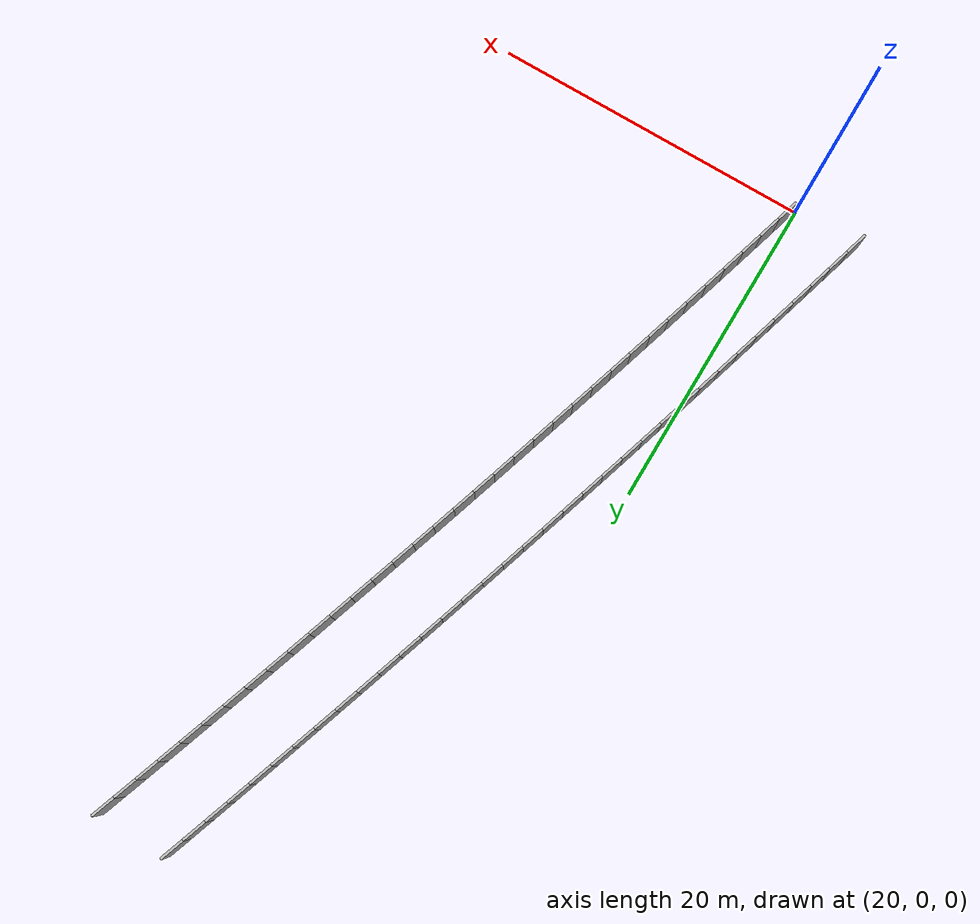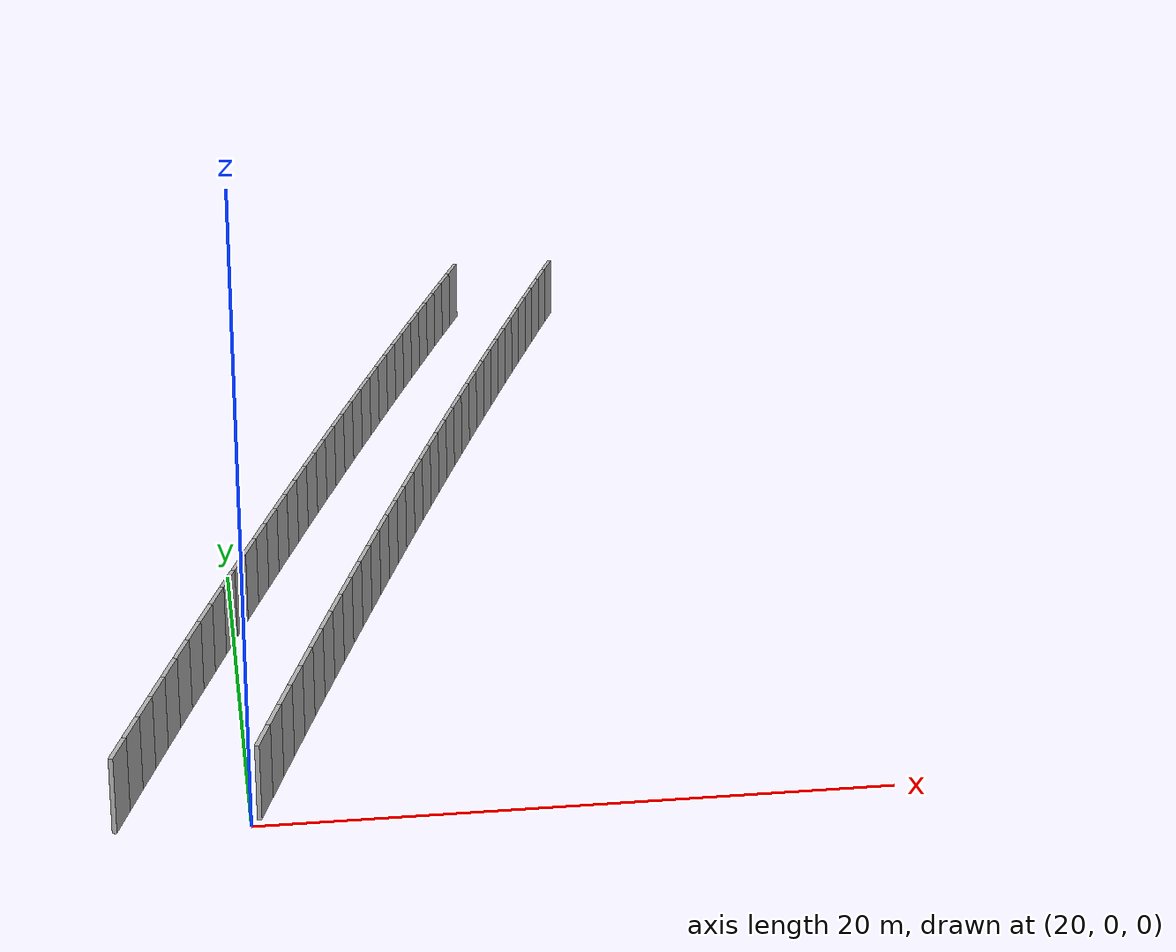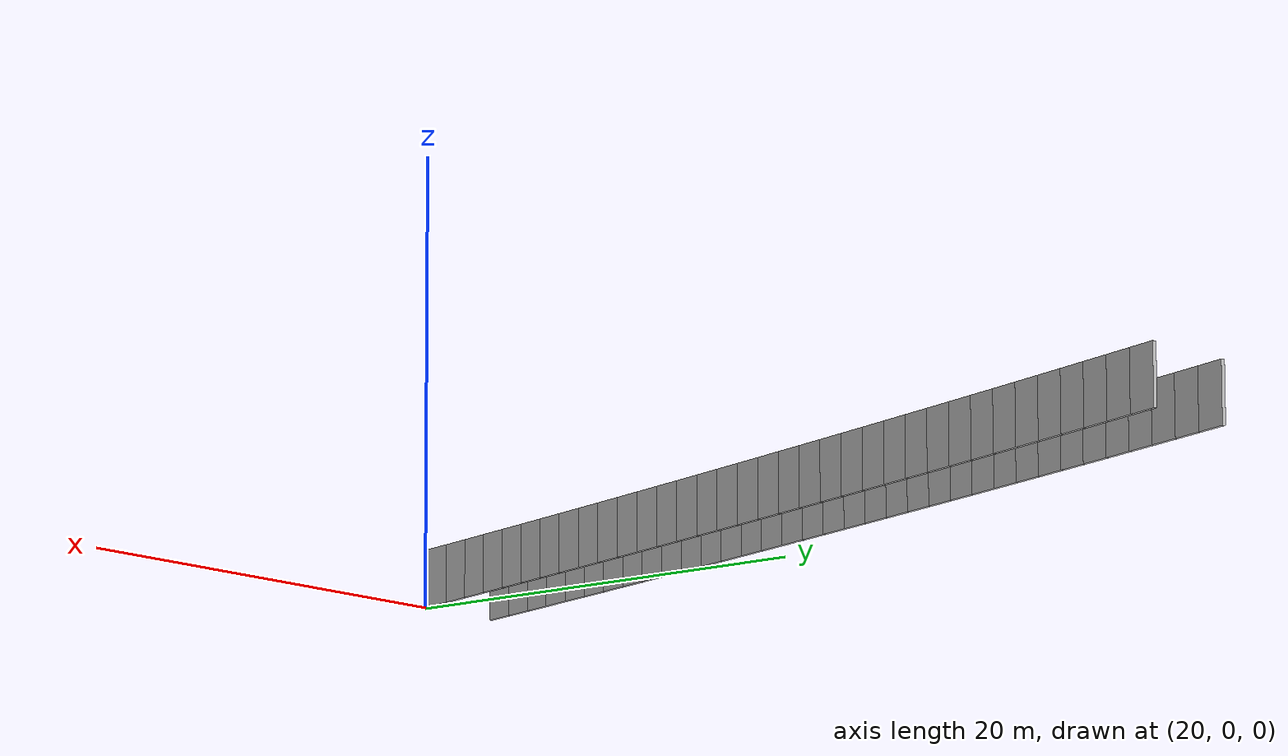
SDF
<?xml version="1.0" ?>
<sdf version="1.6">
  <model name="sps_0331">
    <pose frame="">0 0 0 0 -0 0</pose>
    <static>1</static>
    <self_collide>0</self_collide>
    <allow_auto_disable>0</allow_auto_disable>
    <link name="Wall4999">
      <kinematic>0</kinematic>
      <gravity>1</gravity>
      <self_collide>0</self_collide>
      <collision name="collision">
        <geometry>
          <box>
            <size>1.49666 0.15 2.5</size>
          </box>
        </geometry>
        <pose frame="">0 0 0 0 -0 0</pose>
      </collision>
      <visual name="visual">
        <geometry>
          <box>
            <size>1.49666 0.15 2.5</size>
          </box>
        </geometry>
        <pose frame="">0 0 0 0 -0 0</pose>
        <cast_shadows>1</cast_shadows>
        <transparency>0.0</transparency>
      </visual>
      <pose frame="">35.6731 49.6658 1.25 0 0 -1.90183</pose>
    </link>
    <link name="Wall5000">
      <kinematic>0</kinematic>
      <gravity>1</gravity>
      <self_collide>0</self_collide>
      <collision name="collision">
        <geometry>
          <box>
            <size>1.49643 0.15 2.5</size>
          </box>
        </geometry>
        <pose frame="">0 0 0 0 -0 0</pose>
      </collision>
      <visual name="visual">
        <geometry>
          <box>
            <size>1.49643 0.15 2.5</size>
          </box>
        </geometry>
        <pose frame="">0 0 0 0 -0 0</pose>
        <cast_shadows>1</cast_shadows>
        <transparency>0.0</transparency>
      </visual>
      <pose frame="">35.1879 48.2501 1.25 0 0 -1.90012</pose>
    </link>
    <link name="Wall5001">
      <kinematic>0</kinematic>
      <gravity>1</gravity>
      <self_collide>0</self_collide>
      <collision name="collision">
        <geometry>
          <box>
            <size>1.49667 0.15 2.5</size>
          </box>
        </geometry>
        <pose frame="">0 0 0 0 -0 0</pose>
      </collision>
      <visual name="visual">
        <geometry>
          <box>
            <size>1.49667 0.15 2.5</size>
          </box>
        </geometry>
        <pose frame="">0 0 0 0 -0 0</pose>
        <cast_shadows>1</cast_shadows>
        <transparency>0.0</transparency>
      </visual>
      <pose frame="">34.705 46.8336 1.25 0 0 -1.89856</pose>
    </link>
    <link name="Wall5002">
      <kinematic>0</kinematic>
      <gravity>1</gravity>
      <self_collide>0</self_collide>
      <collision name="collision">
        <geometry>
          <box>
            <size>1.49654 0.15 2.5</size>
          </box>
        </geometry>
        <pose frame="">0 0 0 0 -0 0</pose>
      </collision>
      <visual name="visual">
        <geometry>
          <box>
            <size>1.49654 0.15 2.5</size>
          </box>
        </geometry>
        <pose frame="">0 0 0 0 -0 0</pose>
        <cast_shadows>1</cast_shadows>
        <transparency>0.0</transparency>
      </visual>
      <pose frame="">34.2243 45.4163 1.25 0 0 -1.89704</pose>
    </link>
    <link name="Wall5003">
      <kinematic>0</kinematic>
      <gravity>1</gravity>
      <self_collide>0</self_collide>
      <collision name="collision">
        <geometry>
          <box>
            <size>1.49636 0.15 2.5</size>
          </box>
        </geometry>
        <pose frame="">0 0 0 0 -0 0</pose>
      </collision>
      <visual name="visual">
        <geometry>
          <box>
            <size>1.49636 0.15 2.5</size>
          </box>
        </geometry>
        <pose frame="">0 0 0 0 -0 0</pose>
        <cast_shadows>1</cast_shadows>
        <transparency>0.0</transparency>
      </visual>
      <pose frame="">33.7457 43.9984 1.25 0 0 -1.89553</pose>
    </link>
    <link name="Wall5004">
      <kinematic>0</kinematic>
      <gravity>1</gravity>
      <self_collide>0</self_collide>
      <collision name="collision">
        <geometry>
          <box>
            <size>1.49662 0.15 2.5</size>
          </box>
        </geometry>
        <pose frame="">0 0 0 0 -0 0</pose>
      </collision>
      <visual name="visual">
        <geometry>
          <box>
            <size>1.49662 0.15 2.5</size>
          </box>
        </geometry>
        <pose frame="">0 0 0 0 -0 0</pose>
        <cast_shadows>1</cast_shadows>
        <transparency>0.0</transparency>
      </visual>
      <pose frame="">33.2696 42.5797 1.25 0 0 -1.89375</pose>
    </link>
    <link name="Wall5005">
      <kinematic>0</kinematic>
      <gravity>1</gravity>
      <self_collide>0</self_collide>
      <collision name="collision">
        <geometry>
          <box>
            <size>1.49647 0.15 2.5</size>
          </box>
        </geometry>
        <pose frame="">0 0 0 0 -0 0</pose>
      </collision>
      <visual name="visual">
        <geometry>
          <box>
            <size>1.49647 0.15 2.5</size>
          </box>
        </geometry>
        <pose frame="">0 0 0 0 -0 0</pose>
        <cast_shadows>1</cast_shadows>
        <transparency>0.0</transparency>
      </visual>
      <pose frame="">32.7956 41.1602 1.25 0 0 -1.89228</pose>
    </link>
    <link name="Wall5006">
      <kinematic>0</kinematic>
      <gravity>1</gravity>
      <self_collide>0</self_collide>
      <collision name="collision">
        <geometry>
          <box>
            <size>1.49651 0.15 2.5</size>
          </box>
        </geometry>
        <pose frame="">0 0 0 0 -0 0</pose>
      </collision>
      <visual name="visual">
        <geometry>
          <box>
            <size>1.49651 0.15 2.5</size>
          </box>
        </geometry>
        <pose frame="">0 0 0 0 -0 0</pose>
        <cast_shadows>1</cast_shadows>
        <transparency>0.0</transparency>
      </visual>
      <pose frame="">32.3239 39.74 1.25 0 0 -1.89068</pose>
    </link>
    <link name="Wall5007">
      <kinematic>0</kinematic>
      <gravity>1</gravity>
      <self_collide>0</self_collide>
      <collision name="collision">
        <geometry>
          <box>
            <size>1.49651 0.15 2.5</size>
          </box>
        </geometry>
        <pose frame="">0 0 0 0 -0 0</pose>
      </collision>
      <visual name="visual">
        <geometry>
          <box>
            <size>1.49651 0.15 2.5</size>
          </box>
        </geometry>
        <pose frame="">0 0 0 0 -0 0</pose>
        <cast_shadows>1</cast_shadows>
        <transparency>0.0</transparency>
      </visual>
      <pose frame="">31.8545 38.319 1.25 0 0 -1.889</pose>
    </link>
    <link name="Wall5008">
      <kinematic>0</kinematic>
      <gravity>1</gravity>
      <self_collide>0</self_collide>
      <collision name="collision">
        <geometry>
          <box>
            <size>1.49646 0.15 2.5</size>
          </box>
        </geometry>
        <pose frame="">0 0 0 0 -0 0</pose>
      </collision>
      <visual name="visual">
        <geometry>
          <box>
            <size>1.49646 0.15 2.5</size>
          </box>
        </geometry>
        <pose frame="">0 0 0 0 -0 0</pose>
        <cast_shadows>1</cast_shadows>
        <transparency>0.0</transparency>
      </visual>
      <pose frame="">31.3874 36.8973 1.25 0 0 -1.88759</pose>
    </link>
    <link name="Wall5009">
      <kinematic>0</kinematic>
      <gravity>1</gravity>
      <self_collide>0</self_collide>
      <collision name="collision">
        <geometry>
          <box>
            <size>1.49665 0.15 2.5</size>
          </box>
        </geometry>
        <pose frame="">0 0 0 0 -0 0</pose>
      </collision>
      <visual name="visual">
        <geometry>
          <box>
            <size>1.49665 0.15 2.5</size>
          </box>
        </geometry>
        <pose frame="">0 0 0 0 -0 0</pose>
        <cast_shadows>1</cast_shadows>
        <transparency>0.0</transparency>
      </visual>
      <pose frame="">30.9224 35.4748 1.25 0 0 -1.88588</pose>
    </link>
    <link name="Wall5010">
      <kinematic>0</kinematic>
      <gravity>1</gravity>
      <self_collide>0</self_collide>
      <collision name="collision">
        <geometry>
          <box>
            <size>1.49661 0.15 2.5</size>
          </box>
        </geometry>
        <pose frame="">0 0 0 0 -0 0</pose>
      </collision>
      <visual name="visual">
        <geometry>
          <box>
            <size>1.49661 0.15 2.5</size>
          </box>
        </geometry>
        <pose frame="">0 0 0 0 -0 0</pose>
        <cast_shadows>1</cast_shadows>
        <transparency>0.0</transparency>
      </visual>
      <pose frame="">30.4596 34.0515 1.25 0 0 -1.88434</pose>
    </link>
    <link name="Wall5011">
      <kinematic>0</kinematic>
      <gravity>1</gravity>
      <self_collide>0</self_collide>
      <collision name="collision">
        <geometry>
          <box>
            <size>1.49663 0.15 2.5</size>
          </box>
        </geometry>
        <pose frame="">0 0 0 0 -0 0</pose>
      </collision>
      <visual name="visual">
        <geometry>
          <box>
            <size>1.49663 0.15 2.5</size>
          </box>
        </geometry>
        <pose frame="">0 0 0 0 -0 0</pose>
        <cast_shadows>1</cast_shadows>
        <transparency>0.0</transparency>
      </visual>
      <pose frame="">29.9991 32.6275 1.25 0 0 -1.8828</pose>
    </link>
    <link name="Wall5012">
      <kinematic>0</kinematic>
      <gravity>1</gravity>
      <self_collide>0</self_collide>
      <collision name="collision">
        <geometry>
          <box>
            <size>1.4967 0.15 2.5</size>
          </box>
        </geometry>
        <pose frame="">0 0 0 0 -0 0</pose>
      </collision>
      <visual name="visual">
        <geometry>
          <box>
            <size>1.4967 0.15 2.5</size>
          </box>
        </geometry>
        <pose frame="">0 0 0 0 -0 0</pose>
        <cast_shadows>1</cast_shadows>
        <transparency>0.0</transparency>
      </visual>
      <pose frame="">29.5409 31.2027 1.25 0 0 -1.88107</pose>
    </link>
    <link name="Wall5013">
      <kinematic>0</kinematic>
      <gravity>1</gravity>
      <self_collide>0</self_collide>
      <collision name="collision">
        <geometry>
          <box>
            <size>1.4964 0.15 2.5</size>
          </box>
        </geometry>
        <pose frame="">0 0 0 0 -0 0</pose>
      </collision>
      <visual name="visual">
        <geometry>
          <box>
            <size>1.4964 0.15 2.5</size>
          </box>
        </geometry>
        <pose frame="">0 0 0 0 -0 0</pose>
        <cast_shadows>1</cast_shadows>
        <transparency>0.0</transparency>
      </visual>
      <pose frame="">29.085 29.7773 1.25 0 0 -1.87964</pose>
    </link>
    <link name="Wall5014">
      <kinematic>0</kinematic>
      <gravity>1</gravity>
      <self_collide>0</self_collide>
      <collision name="collision">
        <geometry>
          <box>
            <size>1.49659 0.15 2.5</size>
          </box>
        </geometry>
        <pose frame="">0 0 0 0 -0 0</pose>
      </collision>
      <visual name="visual">
        <geometry>
          <box>
            <size>1.49659 0.15 2.5</size>
          </box>
        </geometry>
        <pose frame="">0 0 0 0 -0 0</pose>
        <cast_shadows>1</cast_shadows>
        <transparency>0.0</transparency>
      </visual>
      <pose frame="">28.6314 28.3512 1.25 0 0 -1.87788</pose>
    </link>
    <link name="Wall5015">
      <kinematic>0</kinematic>
      <gravity>1</gravity>
      <self_collide>0</self_collide>
      <collision name="collision">
        <geometry>
          <box>
            <size>1.49656 0.15 2.5</size>
          </box>
        </geometry>
        <pose frame="">0 0 0 0 -0 0</pose>
      </collision>
      <visual name="visual">
        <geometry>
          <box>
            <size>1.49656 0.15 2.5</size>
          </box>
        </geometry>
        <pose frame="">0 0 0 0 -0 0</pose>
        <cast_shadows>1</cast_shadows>
        <transparency>0.0</transparency>
      </visual>
      <pose frame="">28.18 26.9243 1.25 0 0 -1.87648</pose>
    </link>
    <link name="Wall5016">
      <kinematic>0</kinematic>
      <gravity>1</gravity>
      <self_collide>0</self_collide>
      <collision name="collision">
        <geometry>
          <box>
            <size>1.49643 0.15 2.5</size>
          </box>
        </geometry>
        <pose frame="">0 0 0 0 -0 0</pose>
      </collision>
      <visual name="visual">
        <geometry>
          <box>
            <size>1.49643 0.15 2.5</size>
          </box>
        </geometry>
        <pose frame="">0 0 0 0 -0 0</pose>
        <cast_shadows>1</cast_shadows>
        <transparency>0.0</transparency>
      </visual>
      <pose frame="">27.7309 25.4968 1.25 0 0 -1.87484</pose>
    </link>
    <link name="Wall5017">
      <kinematic>0</kinematic>
      <gravity>1</gravity>
      <self_collide>0</self_collide>
      <collision name="collision">
        <geometry>
          <box>
            <size>1.49653 0.15 2.5</size>
          </box>
        </geometry>
        <pose frame="">0 0 0 0 -0 0</pose>
      </collision>
      <visual name="visual">
        <geometry>
          <box>
            <size>1.49653 0.15 2.5</size>
          </box>
        </geometry>
        <pose frame="">0 0 0 0 -0 0</pose>
        <cast_shadows>1</cast_shadows>
        <transparency>0.0</transparency>
      </visual>
      <pose frame="">27.284 24.0686 1.25 0 0 -1.87328</pose>
    </link>
    <link name="Wall5018">
      <kinematic>0</kinematic>
      <gravity>1</gravity>
      <self_collide>0</self_collide>
      <collision name="collision">
        <geometry>
          <box>
            <size>1.49646 0.15 2.5</size>
          </box>
        </geometry>
        <pose frame="">0 0 0 0 -0 0</pose>
      </collision>
      <visual name="visual">
        <geometry>
          <box>
            <size>1.49646 0.15 2.5</size>
          </box>
        </geometry>
        <pose frame="">0 0 0 0 -0 0</pose>
        <cast_shadows>1</cast_shadows>
        <transparency>0.0</transparency>
      </visual>
      <pose frame="">26.8393 22.6397 1.25 0 0 -1.87163</pose>
    </link>
    <link name="Wall5019">
      <kinematic>0</kinematic>
      <gravity>1</gravity>
      <self_collide>0</self_collide>
      <collision name="collision">
        <geometry>
          <box>
            <size>1.4965 0.15 2.5</size>
          </box>
        </geometry>
        <pose frame="">0 0 0 0 -0 0</pose>
      </collision>
      <visual name="visual">
        <geometry>
          <box>
            <size>1.4965 0.15 2.5</size>
          </box>
        </geometry>
        <pose frame="">0 0 0 0 -0 0</pose>
        <cast_shadows>1</cast_shadows>
        <transparency>0.0</transparency>
      </visual>
      <pose frame="">26.3971 21.2101 1.25 0 0 -1.87004</pose>
    </link>
    <link name="Wall5020">
      <kinematic>0</kinematic>
      <gravity>1</gravity>
      <self_collide>0</self_collide>
      <collision name="collision">
        <geometry>
          <box>
            <size>1.4964 0.15 2.5</size>
          </box>
        </geometry>
        <pose frame="">0 0 0 0 -0 0</pose>
      </collision>
      <visual name="visual">
        <geometry>
          <box>
            <size>1.4964 0.15 2.5</size>
          </box>
        </geometry>
        <pose frame="">0 0 0 0 -0 0</pose>
        <cast_shadows>1</cast_shadows>
        <transparency>0.0</transparency>
      </visual>
      <pose frame="">25.9571 19.7798 1.25 0 0 -1.86844</pose>
    </link>
    <link name="Wall5021">
      <kinematic>0</kinematic>
      <gravity>1</gravity>
      <self_collide>0</self_collide>
      <collision name="collision">
        <geometry>
          <box>
            <size>1.49655 0.15 2.5</size>
          </box>
        </geometry>
        <pose frame="">0 0 0 0 -0 0</pose>
      </collision>
      <visual name="visual">
        <geometry>
          <box>
            <size>1.49655 0.15 2.5</size>
          </box>
        </geometry>
        <pose frame="">0 0 0 0 -0 0</pose>
        <cast_shadows>1</cast_shadows>
        <transparency>0.0</transparency>
      </visual>
      <pose frame="">25.5192 18.3488 1.25 0 0 -1.86696</pose>
    </link>
    <link name="Wall5022">
      <kinematic>0</kinematic>
      <gravity>1</gravity>
      <self_collide>0</self_collide>
      <collision name="collision">
        <geometry>
          <box>
            <size>1.49662 0.15 2.5</size>
          </box>
        </geometry>
        <pose frame="">0 0 0 0 -0 0</pose>
      </collision>
      <visual name="visual">
        <geometry>
          <box>
            <size>1.49662 0.15 2.5</size>
          </box>
        </geometry>
        <pose frame="">0 0 0 0 -0 0</pose>
        <cast_shadows>1</cast_shadows>
        <transparency>0.0</transparency>
      </visual>
      <pose frame="">25.0837 16.917 1.25 0 0 -1.86528</pose>
    </link>
    <link name="Wall5023">
      <kinematic>0</kinematic>
      <gravity>1</gravity>
      <self_collide>0</self_collide>
      <collision name="collision">
        <geometry>
          <box>
            <size>1.49658 0.15 2.5</size>
          </box>
        </geometry>
        <pose frame="">0 0 0 0 -0 0</pose>
      </collision>
      <visual name="visual">
        <geometry>
          <box>
            <size>1.49658 0.15 2.5</size>
          </box>
        </geometry>
        <pose frame="">0 0 0 0 -0 0</pose>
        <cast_shadows>1</cast_shadows>
        <transparency>0.0</transparency>
      </visual>
      <pose frame="">24.6504 15.4845 1.25 0 0 -1.8638</pose>
    </link>
    <link name="Wall5024">
      <kinematic>0</kinematic>
      <gravity>1</gravity>
      <self_collide>0</self_collide>
      <collision name="collision">
        <geometry>
          <box>
            <size>1.49645 0.15 2.5</size>
          </box>
        </geometry>
        <pose frame="">0 0 0 0 -0 0</pose>
      </collision>
      <visual name="visual">
        <geometry>
          <box>
            <size>1.49645 0.15 2.5</size>
          </box>
        </geometry>
        <pose frame="">0 0 0 0 -0 0</pose>
        <cast_shadows>1</cast_shadows>
        <transparency>0.0</transparency>
      </visual>
      <pose frame="">24.2194 14.0514 1.25 0 0 -1.86208</pose>
    </link>
    <link name="Wall5025">
      <kinematic>0</kinematic>
      <gravity>1</gravity>
      <self_collide>0</self_collide>
      <collision name="collision">
        <geometry>
          <box>
            <size>1.49659 0.15 2.5</size>
          </box>
        </geometry>
        <pose frame="">0 0 0 0 -0 0</pose>
      </collision>
      <visual name="visual">
        <geometry>
          <box>
            <size>1.49659 0.15 2.5</size>
          </box>
        </geometry>
        <pose frame="">0 0 0 0 -0 0</pose>
        <cast_shadows>1</cast_shadows>
        <transparency>0.0</transparency>
      </visual>
      <pose frame="">23.7907 12.6176 1.25 0 0 -1.86056</pose>
    </link>
    <link name="Wall5026">
      <kinematic>0</kinematic>
      <gravity>1</gravity>
      <self_collide>0</self_collide>
      <collision name="collision">
        <geometry>
          <box>
            <size>1.49649 0.15 2.5</size>
          </box>
        </geometry>
        <pose frame="">0 0 0 0 -0 0</pose>
      </collision>
      <visual name="visual">
        <geometry>
          <box>
            <size>1.49649 0.15 2.5</size>
          </box>
        </geometry>
        <pose frame="">0 0 0 0 -0 0</pose>
        <cast_shadows>1</cast_shadows>
        <transparency>0.0</transparency>
      </visual>
      <pose frame="">23.3642 11.1831 1.25 0 0 -1.85905</pose>
    </link>
    <link name="Wall5027">
      <kinematic>0</kinematic>
      <gravity>1</gravity>
      <self_collide>0</self_collide>
      <collision name="collision">
        <geometry>
          <box>
            <size>1.49652 0.15 2.5</size>
          </box>
        </geometry>
        <pose frame="">0 0 0 0 -0 0</pose>
      </collision>
      <visual name="visual">
        <geometry>
          <box>
            <size>1.49652 0.15 2.5</size>
          </box>
        </geometry>
        <pose frame="">0 0 0 0 -0 0</pose>
        <cast_shadows>1</cast_shadows>
        <transparency>0.0</transparency>
      </visual>
      <pose frame="">22.9398 9.748 1.25 0 0 -1.85751</pose>
    </link>
    <link name="Wall5028">
      <kinematic>0</kinematic>
      <gravity>1</gravity>
      <self_collide>0</self_collide>
      <collision name="collision">
        <geometry>
          <box>
            <size>1.49654 0.15 2.5</size>
          </box>
        </geometry>
        <pose frame="">0 0 0 0 -0 0</pose>
      </collision>
      <visual name="visual">
        <geometry>
          <box>
            <size>1.49654 0.15 2.5</size>
          </box>
        </geometry>
        <pose frame="">0 0 0 0 -0 0</pose>
        <cast_shadows>1</cast_shadows>
        <transparency>0.0</transparency>
      </visual>
      <pose frame="">22.5179 8.31218 1.25 0 0 -1.85568</pose>
    </link>
    <link name="Wall5029">
      <kinematic>0</kinematic>
      <gravity>1</gravity>
      <self_collide>0</self_collide>
      <collision name="collision">
        <geometry>
          <box>
            <size>1.4965 0.15 2.5</size>
          </box>
        </geometry>
        <pose frame="">0 0 0 0 -0 0</pose>
      </collision>
      <visual name="visual">
        <geometry>
          <box>
            <size>1.4965 0.15 2.5</size>
          </box>
        </geometry>
        <pose frame="">0 0 0 0 -0 0</pose>
        <cast_shadows>1</cast_shadows>
        <transparency>0.0</transparency>
      </visual>
      <pose frame="">22.0983 6.87569 1.25 0 0 -1.85428</pose>
    </link>
    <link name="Wall5030">
      <kinematic>0</kinematic>
      <gravity>1</gravity>
      <self_collide>0</self_collide>
      <collision name="collision">
        <geometry>
          <box>
            <size>1.49648 0.15 2.5</size>
          </box>
        </geometry>
        <pose frame="">0 0 0 0 -0 0</pose>
      </collision>
      <visual name="visual">
        <geometry>
          <box>
            <size>1.49648 0.15 2.5</size>
          </box>
        </geometry>
        <pose frame="">0 0 0 0 -0 0</pose>
        <cast_shadows>1</cast_shadows>
        <transparency>0.0</transparency>
      </visual>
      <pose frame="">21.681 5.43858 1.25 0 0 -1.85263</pose>
    </link>
    <link name="Wall5031">
      <kinematic>0</kinematic>
      <gravity>1</gravity>
      <self_collide>0</self_collide>
      <collision name="collision">
        <geometry>
          <box>
            <size>1.4964 0.15 2.5</size>
          </box>
        </geometry>
        <pose frame="">0 0 0 0 -0 0</pose>
      </collision>
      <visual name="visual">
        <geometry>
          <box>
            <size>1.4964 0.15 2.5</size>
          </box>
        </geometry>
        <pose frame="">0 0 0 0 -0 0</pose>
        <cast_shadows>1</cast_shadows>
        <transparency>0.0</transparency>
      </visual>
      <pose frame="">21.2659 4.00087 1.25 0 0 -1.85112</pose>
    </link>
    <link name="Wall5032">
      <kinematic>0</kinematic>
      <gravity>1</gravity>
      <self_collide>0</self_collide>
      <collision name="collision">
        <geometry>
          <box>
            <size>1.4965 0.15 2.5</size>
          </box>
        </geometry>
        <pose frame="">0 0 0 0 -0 0</pose>
      </collision>
      <visual name="visual">
        <geometry>
          <box>
            <size>1.4965 0.15 2.5</size>
          </box>
        </geometry>
        <pose frame="">0 0 0 0 -0 0</pose>
        <cast_shadows>1</cast_shadows>
        <transparency>0.0</transparency>
      </visual>
      <pose frame="">20.853 2.56248 1.25 0 0 -1.84944</pose>
    </link>
    <link name="Wall5033">
      <kinematic>0</kinematic>
      <gravity>1</gravity>
      <self_collide>0</self_collide>
      <collision name="collision">
        <geometry>
          <box>
            <size>1.49665 0.15 2.5</size>
          </box>
        </geometry>
        <pose frame="">0 0 0 0 -0 0</pose>
      </collision>
      <visual name="visual">
        <geometry>
          <box>
            <size>1.49665 0.15 2.5</size>
          </box>
        </geometry>
        <pose frame="">0 0 0 0 -0 0</pose>
        <cast_shadows>1</cast_shadows>
        <transparency>0.0</transparency>
      </visual>
      <pose frame="">20.4426 1.12331 1.25 0 0 -1.84785</pose>
    </link>
    <link name="Wall6796">
      <kinematic>0</kinematic>
      <gravity>1</gravity>
      <self_collide>0</self_collide>
      <collision name="collision">
        <geometry>
          <box>
            <size>1.50305 0.15 2.5</size>
          </box>
        </geometry>
        <pose frame="">0 0 0 0 -0 0</pose>
      </collision>
      <visual name="visual">
        <geometry>
          <box>
            <size>1.50305 0.15 2.5</size>
          </box>
        </geometry>
        <pose frame="">0 0 0 0 -0 0</pose>
        <cast_shadows>1</cast_shadows>
        <transparency>0.0</transparency>
      </visual>
      <pose frame="">31.2711 49.5892 1.25 0 0 -1.9002</pose>
    </link>
    <link name="Wall6797">
      <kinematic>0</kinematic>
      <gravity>1</gravity>
      <self_collide>0</self_collide>
      <collision name="collision">
        <geometry>
          <box>
            <size>1.50321 0.15 2.5</size>
          </box>
        </geometry>
        <pose frame="">0 0 0 0 -0 0</pose>
      </collision>
      <visual name="visual">
        <geometry>
          <box>
            <size>1.50321 0.15 2.5</size>
          </box>
        </geometry>
        <pose frame="">0 0 0 0 -0 0</pose>
        <cast_shadows>1</cast_shadows>
        <transparency>0.0</transparency>
      </visual>
      <pose frame="">30.786 48.1665 1.25 0 0 -1.89862</pose>
    </link>
    <link name="Wall6798">
      <kinematic>0</kinematic>
      <gravity>1</gravity>
      <self_collide>0</self_collide>
      <collision name="collision">
        <geometry>
          <box>
            <size>1.50341 0.15 2.5</size>
          </box>
        </geometry>
        <pose frame="">0 0 0 0 -0 0</pose>
      </collision>
      <visual name="visual">
        <geometry>
          <box>
            <size>1.50341 0.15 2.5</size>
          </box>
        </geometry>
        <pose frame="">0 0 0 0 -0 0</pose>
        <cast_shadows>1</cast_shadows>
        <transparency>0.0</transparency>
      </visual>
      <pose frame="">30.3032 46.7428 1.25 0 0 -1.89686</pose>
    </link>
    <link name="Wall6799">
      <kinematic>0</kinematic>
      <gravity>1</gravity>
      <self_collide>0</self_collide>
      <collision name="collision">
        <geometry>
          <box>
            <size>1.50296 0.15 2.5</size>
          </box>
        </geometry>
        <pose frame="">0 0 0 0 -0 0</pose>
      </collision>
      <visual name="visual">
        <geometry>
          <box>
            <size>1.50296 0.15 2.5</size>
          </box>
        </geometry>
        <pose frame="">0 0 0 0 -0 0</pose>
        <cast_shadows>1</cast_shadows>
        <transparency>0.0</transparency>
      </visual>
      <pose frame="">29.8227 45.3185 1.25 0 0 -1.89546</pose>
    </link>
    <link name="Wall6800">
      <kinematic>0</kinematic>
      <gravity>1</gravity>
      <self_collide>0</self_collide>
      <collision name="collision">
        <geometry>
          <box>
            <size>1.50287 0.15 2.5</size>
          </box>
        </geometry>
        <pose frame="">0 0 0 0 -0 0</pose>
      </collision>
      <visual name="visual">
        <geometry>
          <box>
            <size>1.50287 0.15 2.5</size>
          </box>
        </geometry>
        <pose frame="">0 0 0 0 -0 0</pose>
        <cast_shadows>1</cast_shadows>
        <transparency>0.0</transparency>
      </visual>
      <pose frame="">29.3445 43.8937 1.25 0 0 -1.89377</pose>
    </link>
    <link name="Wall6801">
      <kinematic>0</kinematic>
      <gravity>1</gravity>
      <self_collide>0</self_collide>
      <collision name="collision">
        <geometry>
          <box>
            <size>1.50322 0.15 2.5</size>
          </box>
        </geometry>
        <pose frame="">0 0 0 0 -0 0</pose>
      </collision>
      <visual name="visual">
        <geometry>
          <box>
            <size>1.50322 0.15 2.5</size>
          </box>
        </geometry>
        <pose frame="">0 0 0 0 -0 0</pose>
        <cast_shadows>1</cast_shadows>
        <transparency>0.0</transparency>
      </visual>
      <pose frame="">28.8686 42.468 1.25 0 0 -1.89228</pose>
    </link>
    <link name="Wall6802">
      <kinematic>0</kinematic>
      <gravity>1</gravity>
      <self_collide>0</self_collide>
      <collision name="collision">
        <geometry>
          <box>
            <size>1.50313 0.15 2.5</size>
          </box>
        </geometry>
        <pose frame="">0 0 0 0 -0 0</pose>
      </collision>
      <visual name="visual">
        <geometry>
          <box>
            <size>1.50313 0.15 2.5</size>
          </box>
        </geometry>
        <pose frame="">0 0 0 0 -0 0</pose>
        <cast_shadows>1</cast_shadows>
        <transparency>0.0</transparency>
      </visual>
      <pose frame="">28.3946 41.0415 1.25 0 0 -1.8908</pose>
    </link>
    <link name="Wall6803">
      <kinematic>0</kinematic>
      <gravity>1</gravity>
      <self_collide>0</self_collide>
      <collision name="collision">
        <geometry>
          <box>
            <size>1.50311 0.15 2.5</size>
          </box>
        </geometry>
        <pose frame="">0 0 0 0 -0 0</pose>
      </collision>
      <visual name="visual">
        <geometry>
          <box>
            <size>1.50311 0.15 2.5</size>
          </box>
        </geometry>
        <pose frame="">0 0 0 0 -0 0</pose>
        <cast_shadows>1</cast_shadows>
        <transparency>0.0</transparency>
      </visual>
      <pose frame="">27.923 39.6143 1.25 0 0 -1.88909</pose>
    </link>
    <link name="Wall6804">
      <kinematic>0</kinematic>
      <gravity>1</gravity>
      <self_collide>0</self_collide>
      <collision name="collision">
        <geometry>
          <box>
            <size>1.50305 0.15 2.5</size>
          </box>
        </geometry>
        <pose frame="">0 0 0 0 -0 0</pose>
      </collision>
      <visual name="visual">
        <geometry>
          <box>
            <size>1.50305 0.15 2.5</size>
          </box>
        </geometry>
        <pose frame="">0 0 0 0 -0 0</pose>
        <cast_shadows>1</cast_shadows>
        <transparency>0.0</transparency>
      </visual>
      <pose frame="">27.4538 38.1863 1.25 0 0 -1.8874</pose>
    </link>
    <link name="Wall6805">
      <kinematic>0</kinematic>
      <gravity>1</gravity>
      <self_collide>0</self_collide>
      <collision name="collision">
        <geometry>
          <box>
            <size>1.50302 0.15 2.5</size>
          </box>
        </geometry>
        <pose frame="">0 0 0 0 -0 0</pose>
      </collision>
      <visual name="visual">
        <geometry>
          <box>
            <size>1.50302 0.15 2.5</size>
          </box>
        </geometry>
        <pose frame="">0 0 0 0 -0 0</pose>
        <cast_shadows>1</cast_shadows>
        <transparency>0.0</transparency>
      </visual>
      <pose frame="">26.987 36.7576 1.25 0 0 -1.88591</pose>
    </link>
    <link name="Wall6806">
      <kinematic>0</kinematic>
      <gravity>1</gravity>
      <self_collide>0</self_collide>
      <collision name="collision">
        <geometry>
          <box>
            <size>1.50292 0.15 2.5</size>
          </box>
        </geometry>
        <pose frame="">0 0 0 0 -0 0</pose>
      </collision>
      <visual name="visual">
        <geometry>
          <box>
            <size>1.50292 0.15 2.5</size>
          </box>
        </geometry>
        <pose frame="">0 0 0 0 -0 0</pose>
        <cast_shadows>1</cast_shadows>
        <transparency>0.0</transparency>
      </visual>
      <pose frame="">26.5222 35.3283 1.25 0 0 -1.88439</pose>
    </link>
    <link name="Wall6807">
      <kinematic>0</kinematic>
      <gravity>1</gravity>
      <self_collide>0</self_collide>
      <collision name="collision">
        <geometry>
          <box>
            <size>1.5031 0.15 2.5</size>
          </box>
        </geometry>
        <pose frame="">0 0 0 0 -0 0</pose>
      </collision>
      <visual name="visual">
        <geometry>
          <box>
            <size>1.5031 0.15 2.5</size>
          </box>
        </geometry>
        <pose frame="">0 0 0 0 -0 0</pose>
        <cast_shadows>1</cast_shadows>
        <transparency>0.0</transparency>
      </visual>
      <pose frame="">26.0598 33.8982 1.25 0 0 -1.88265</pose>
    </link>
    <link name="Wall6808">
      <kinematic>0</kinematic>
      <gravity>1</gravity>
      <self_collide>0</self_collide>
      <collision name="collision">
        <geometry>
          <box>
            <size>1.50324 0.15 2.5</size>
          </box>
        </geometry>
        <pose frame="">0 0 0 0 -0 0</pose>
      </collision>
      <visual name="visual">
        <geometry>
          <box>
            <size>1.50324 0.15 2.5</size>
          </box>
        </geometry>
        <pose frame="">0 0 0 0 -0 0</pose>
        <cast_shadows>1</cast_shadows>
        <transparency>0.0</transparency>
      </visual>
      <pose frame="">25.5997 32.4672 1.25 0 0 -1.88121</pose>
    </link>
    <link name="Wall6809">
      <kinematic>0</kinematic>
      <gravity>1</gravity>
      <self_collide>0</self_collide>
      <collision name="collision">
        <geometry>
          <box>
            <size>1.50311 0.15 2.5</size>
          </box>
        </geometry>
        <pose frame="">0 0 0 0 -0 0</pose>
      </collision>
      <visual name="visual">
        <geometry>
          <box>
            <size>1.50311 0.15 2.5</size>
          </box>
        </geometry>
        <pose frame="">0 0 0 0 -0 0</pose>
        <cast_shadows>1</cast_shadows>
        <transparency>0.0</transparency>
      </visual>
      <pose frame="">25.1417 31.0355 1.25 0 0 -1.87962</pose>
    </link>
    <link name="Wall6810">
      <kinematic>0</kinematic>
      <gravity>1</gravity>
      <self_collide>0</self_collide>
      <collision name="collision">
        <geometry>
          <box>
            <size>1.50288 0.15 2.5</size>
          </box>
        </geometry>
        <pose frame="">0 0 0 0 -0 0</pose>
      </collision>
      <visual name="visual">
        <geometry>
          <box>
            <size>1.50288 0.15 2.5</size>
          </box>
        </geometry>
        <pose frame="">0 0 0 0 -0 0</pose>
        <cast_shadows>1</cast_shadows>
        <transparency>0.0</transparency>
      </visual>
      <pose frame="">24.6861 29.6032 1.25 0 0 -1.87792</pose>
    </link>
    <link name="Wall6811">
      <kinematic>0</kinematic>
      <gravity>1</gravity>
      <self_collide>0</self_collide>
      <collision name="collision">
        <geometry>
          <box>
            <size>1.50312 0.15 2.5</size>
          </box>
        </geometry>
        <pose frame="">0 0 0 0 -0 0</pose>
      </collision>
      <visual name="visual">
        <geometry>
          <box>
            <size>1.50312 0.15 2.5</size>
          </box>
        </geometry>
        <pose frame="">0 0 0 0 -0 0</pose>
        <cast_shadows>1</cast_shadows>
        <transparency>0.0</transparency>
      </visual>
      <pose frame="">24.2327 28.1702 1.25 0 0 -1.87655</pose>
    </link>
    <link name="Wall6812">
      <kinematic>0</kinematic>
      <gravity>1</gravity>
      <self_collide>0</self_collide>
      <collision name="collision">
        <geometry>
          <box>
            <size>1.50307 0.15 2.5</size>
          </box>
        </geometry>
        <pose frame="">0 0 0 0 -0 0</pose>
      </collision>
      <visual name="visual">
        <geometry>
          <box>
            <size>1.50307 0.15 2.5</size>
          </box>
        </geometry>
        <pose frame="">0 0 0 0 -0 0</pose>
        <cast_shadows>1</cast_shadows>
        <transparency>0.0</transparency>
      </visual>
      <pose frame="">23.7815 26.7364 1.25 0 0 -1.87468</pose>
    </link>
    <link name="Wall6813">
      <kinematic>0</kinematic>
      <gravity>1</gravity>
      <self_collide>0</self_collide>
      <collision name="collision">
        <geometry>
          <box>
            <size>1.50307 0.15 2.5</size>
          </box>
        </geometry>
        <pose frame="">0 0 0 0 -0 0</pose>
      </collision>
      <visual name="visual">
        <geometry>
          <box>
            <size>1.50307 0.15 2.5</size>
          </box>
        </geometry>
        <pose frame="">0 0 0 0 -0 0</pose>
        <cast_shadows>1</cast_shadows>
        <transparency>0.0</transparency>
      </visual>
      <pose frame="">23.3328 25.3019 1.25 0 0 -1.87332</pose>
    </link>
    <link name="Wall6814">
      <kinematic>0</kinematic>
      <gravity>1</gravity>
      <self_collide>0</self_collide>
      <collision name="collision">
        <geometry>
          <box>
            <size>1.50311 0.15 2.5</size>
          </box>
        </geometry>
        <pose frame="">0 0 0 0 -0 0</pose>
      </collision>
      <visual name="visual">
        <geometry>
          <box>
            <size>1.50311 0.15 2.5</size>
          </box>
        </geometry>
        <pose frame="">0 0 0 0 -0 0</pose>
        <cast_shadows>1</cast_shadows>
        <transparency>0.0</transparency>
      </visual>
      <pose frame="">22.8862 23.8667 1.25 0 0 -1.87161</pose>
    </link>
    <link name="Wall6815">
      <kinematic>0</kinematic>
      <gravity>1</gravity>
      <self_collide>0</self_collide>
      <collision name="collision">
        <geometry>
          <box>
            <size>1.503 0.15 2.5</size>
          </box>
        </geometry>
        <pose frame="">0 0 0 0 -0 0</pose>
      </collision>
      <visual name="visual">
        <geometry>
          <box>
            <size>1.503 0.15 2.5</size>
          </box>
        </geometry>
        <pose frame="">0 0 0 0 -0 0</pose>
        <cast_shadows>1</cast_shadows>
        <transparency>0.0</transparency>
      </visual>
      <pose frame="">22.4419 22.4308 1.25 0 0 -1.87015</pose>
    </link>
    <link name="Wall6816">
      <kinematic>0</kinematic>
      <gravity>1</gravity>
      <self_collide>0</self_collide>
      <collision name="collision">
        <geometry>
          <box>
            <size>1.5031 0.15 2.5</size>
          </box>
        </geometry>
        <pose frame="">0 0 0 0 -0 0</pose>
      </collision>
      <visual name="visual">
        <geometry>
          <box>
            <size>1.5031 0.15 2.5</size>
          </box>
        </geometry>
        <pose frame="">0 0 0 0 -0 0</pose>
        <cast_shadows>1</cast_shadows>
        <transparency>0.0</transparency>
      </visual>
      <pose frame="">21.9998 20.9942 1.25 0 0 -1.86843</pose>
    </link>
    <link name="Wall6817">
      <kinematic>0</kinematic>
      <gravity>1</gravity>
      <self_collide>0</self_collide>
      <collision name="collision">
        <geometry>
          <box>
            <size>1.50321 0.15 2.5</size>
          </box>
        </geometry>
        <pose frame="">0 0 0 0 -0 0</pose>
      </collision>
      <visual name="visual">
        <geometry>
          <box>
            <size>1.50321 0.15 2.5</size>
          </box>
        </geometry>
        <pose frame="">0 0 0 0 -0 0</pose>
        <cast_shadows>1</cast_shadows>
        <transparency>0.0</transparency>
      </visual>
      <pose frame="">21.5601 19.5568 1.25 0 0 -1.86688</pose>
    </link>
    <link name="Wall6818">
      <kinematic>0</kinematic>
      <gravity>1</gravity>
      <self_collide>0</self_collide>
      <collision name="collision">
        <geometry>
          <box>
            <size>1.50316 0.15 2.5</size>
          </box>
        </geometry>
        <pose frame="">0 0 0 0 -0 0</pose>
      </collision>
      <visual name="visual">
        <geometry>
          <box>
            <size>1.50316 0.15 2.5</size>
          </box>
        </geometry>
        <pose frame="">0 0 0 0 -0 0</pose>
        <cast_shadows>1</cast_shadows>
        <transparency>0.0</transparency>
      </visual>
      <pose frame="">21.1226 18.1187 1.25 0 0 -1.86536</pose>
    </link>
    <link name="Wall6819">
      <kinematic>0</kinematic>
      <gravity>1</gravity>
      <self_collide>0</self_collide>
      <collision name="collision">
        <geometry>
          <box>
            <size>1.50304 0.15 2.5</size>
          </box>
        </geometry>
        <pose frame="">0 0 0 0 -0 0</pose>
      </collision>
      <visual name="visual">
        <geometry>
          <box>
            <size>1.50304 0.15 2.5</size>
          </box>
        </geometry>
        <pose frame="">0 0 0 0 -0 0</pose>
        <cast_shadows>1</cast_shadows>
        <transparency>0.0</transparency>
      </visual>
      <pose frame="">20.6875 16.68 1.25 0 0 -1.86369</pose>
    </link>
    <link name="Wall6820">
      <kinematic>0</kinematic>
      <gravity>1</gravity>
      <self_collide>0</self_collide>
      <collision name="collision">
        <geometry>
          <box>
            <size>1.50312 0.15 2.5</size>
          </box>
        </geometry>
        <pose frame="">0 0 0 0 -0 0</pose>
      </collision>
      <visual name="visual">
        <geometry>
          <box>
            <size>1.50312 0.15 2.5</size>
          </box>
        </geometry>
        <pose frame="">0 0 0 0 -0 0</pose>
        <cast_shadows>1</cast_shadows>
        <transparency>0.0</transparency>
      </visual>
      <pose frame="">20.2546 15.2406 1.25 0 0 -1.86219</pose>
    </link>
    <link name="Wall6821">
      <kinematic>0</kinematic>
      <gravity>1</gravity>
      <self_collide>0</self_collide>
      <collision name="collision">
        <geometry>
          <box>
            <size>1.50307 0.15 2.5</size>
          </box>
        </geometry>
        <pose frame="">0 0 0 0 -0 0</pose>
      </collision>
      <visual name="visual">
        <geometry>
          <box>
            <size>1.50307 0.15 2.5</size>
          </box>
        </geometry>
        <pose frame="">0 0 0 0 -0 0</pose>
        <cast_shadows>1</cast_shadows>
        <transparency>0.0</transparency>
      </visual>
      <pose frame="">19.824 13.8005 1.25 0 0 -1.8605</pose>
    </link>
    <link name="Wall6822">
      <kinematic>0</kinematic>
      <gravity>1</gravity>
      <self_collide>0</self_collide>
      <collision name="collision">
        <geometry>
          <box>
            <size>1.50298 0.15 2.5</size>
          </box>
        </geometry>
        <pose frame="">0 0 0 0 -0 0</pose>
      </collision>
      <visual name="visual">
        <geometry>
          <box>
            <size>1.50298 0.15 2.5</size>
          </box>
        </geometry>
        <pose frame="">0 0 0 0 -0 0</pose>
        <cast_shadows>1</cast_shadows>
        <transparency>0.0</transparency>
      </visual>
      <pose frame="">19.3957 12.3598 1.25 0 0 -1.85904</pose>
    </link>
    <link name="Wall6823">
      <kinematic>0</kinematic>
      <gravity>1</gravity>
      <self_collide>0</self_collide>
      <collision name="collision">
        <geometry>
          <box>
            <size>1.50316 0.15 2.5</size>
          </box>
        </geometry>
        <pose frame="">0 0 0 0 -0 0</pose>
      </collision>
      <visual name="visual">
        <geometry>
          <box>
            <size>1.50316 0.15 2.5</size>
          </box>
        </geometry>
        <pose frame="">0 0 0 0 -0 0</pose>
        <cast_shadows>1</cast_shadows>
        <transparency>0.0</transparency>
      </visual>
      <pose frame="">18.9695 10.9184 1.25 0 0 -1.85743</pose>
    </link>
    <link name="Wall6824">
      <kinematic>0</kinematic>
      <gravity>1</gravity>
      <self_collide>0</self_collide>
      <collision name="collision">
        <geometry>
          <box>
            <size>1.50307 0.15 2.5</size>
          </box>
        </geometry>
        <pose frame="">0 0 0 0 -0 0</pose>
      </collision>
      <visual name="visual">
        <geometry>
          <box>
            <size>1.50307 0.15 2.5</size>
          </box>
        </geometry>
        <pose frame="">0 0 0 0 -0 0</pose>
        <cast_shadows>1</cast_shadows>
        <transparency>0.0</transparency>
      </visual>
      <pose frame="">18.5456 9.47627 1.25 0 0 -1.85593</pose>
    </link>
    <link name="Wall6825">
      <kinematic>0</kinematic>
      <gravity>1</gravity>
      <self_collide>0</self_collide>
      <collision name="collision">
        <geometry>
          <box>
            <size>1.50299 0.15 2.5</size>
          </box>
        </geometry>
        <pose frame="">0 0 0 0 -0 0</pose>
      </collision>
      <visual name="visual">
        <geometry>
          <box>
            <size>1.50299 0.15 2.5</size>
          </box>
        </geometry>
        <pose frame="">0 0 0 0 -0 0</pose>
        <cast_shadows>1</cast_shadows>
        <transparency>0.0</transparency>
      </visual>
      <pose frame="">18.124 8.03358 1.25 0 0 -1.85429</pose>
    </link>
    <link name="Wall6826">
      <kinematic>0</kinematic>
      <gravity>1</gravity>
      <self_collide>0</self_collide>
      <collision name="collision">
        <geometry>
          <box>
            <size>1.50307 0.15 2.5</size>
          </box>
        </geometry>
        <pose frame="">0 0 0 0 -0 0</pose>
      </collision>
      <visual name="visual">
        <geometry>
          <box>
            <size>1.50307 0.15 2.5</size>
          </box>
        </geometry>
        <pose frame="">0 0 0 0 -0 0</pose>
        <cast_shadows>1</cast_shadows>
        <transparency>0.0</transparency>
      </visual>
      <pose frame="">17.7049 6.59019 1.25 0 0 -1.85259</pose>
    </link>
    <link name="Wall6827">
      <kinematic>0</kinematic>
      <gravity>1</gravity>
      <self_collide>0</self_collide>
      <collision name="collision">
        <geometry>
          <box>
            <size>1.50324 0.15 2.5</size>
          </box>
        </geometry>
        <pose frame="">0 0 0 0 -0 0</pose>
      </collision>
      <visual name="visual">
        <geometry>
          <box>
            <size>1.50324 0.15 2.5</size>
          </box>
        </geometry>
        <pose frame="">0 0 0 0 -0 0</pose>
        <cast_shadows>1</cast_shadows>
        <transparency>0.0</transparency>
      </visual>
      <pose frame="">17.288 5.14601 1.25 0 0 -1.85108</pose>
    </link>
    <link name="Wall6828">
      <kinematic>0</kinematic>
      <gravity>1</gravity>
      <self_collide>0</self_collide>
      <collision name="collision">
        <geometry>
          <box>
            <size>1.50298 0.15 2.5</size>
          </box>
        </geometry>
        <pose frame="">0 0 0 0 -0 0</pose>
      </collision>
      <visual name="visual">
        <geometry>
          <box>
            <size>1.50298 0.15 2.5</size>
          </box>
        </geometry>
        <pose frame="">0 0 0 0 -0 0</pose>
        <cast_shadows>1</cast_shadows>
        <transparency>0.0</transparency>
      </visual>
      <pose frame="">16.8733 3.70122 1.25 0 0 -1.84944</pose>
    </link>
    <link name="Wall6829">
      <kinematic>0</kinematic>
      <gravity>1</gravity>
      <self_collide>0</self_collide>
      <collision name="collision">
        <geometry>
          <box>
            <size>1.50309 0.15 2.5</size>
          </box>
        </geometry>
        <pose frame="">0 0 0 0 -0 0</pose>
      </collision>
      <visual name="visual">
        <geometry>
          <box>
            <size>1.50309 0.15 2.5</size>
          </box>
        </geometry>
        <pose frame="">0 0 0 0 -0 0</pose>
        <cast_shadows>1</cast_shadows>
        <transparency>0.0</transparency>
      </visual>
      <pose frame="">16.4611 2.25581 1.25 0 0 -1.84777</pose>
    </link>
    <link name="Wall6830">
      <kinematic>0</kinematic>
      <gravity>1</gravity>
      <self_collide>0</self_collide>
      <collision name="collision">
        <geometry>
          <box>
            <size>1.50295 0.15 2.5</size>
          </box>
        </geometry>
        <pose frame="">0 0 0 0 -0 0</pose>
      </collision>
      <visual name="visual">
        <geometry>
          <box>
            <size>1.50295 0.15 2.5</size>
          </box>
        </geometry>
        <pose frame="">0 0 0 0 -0 0</pose>
        <cast_shadows>1</cast_shadows>
        <transparency>0.0</transparency>
      </visual>
      <pose frame="">16.0511 0.809798 1.25 0 0 -1.8464</pose>
    </link>
  </model>
</sdf>
